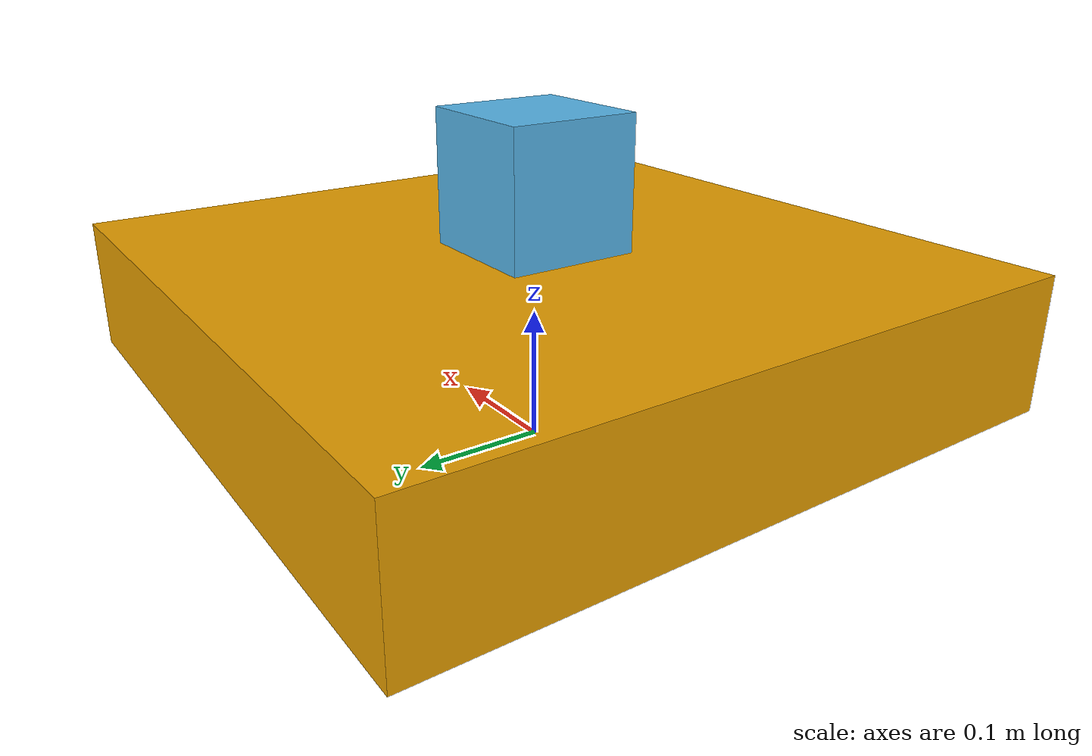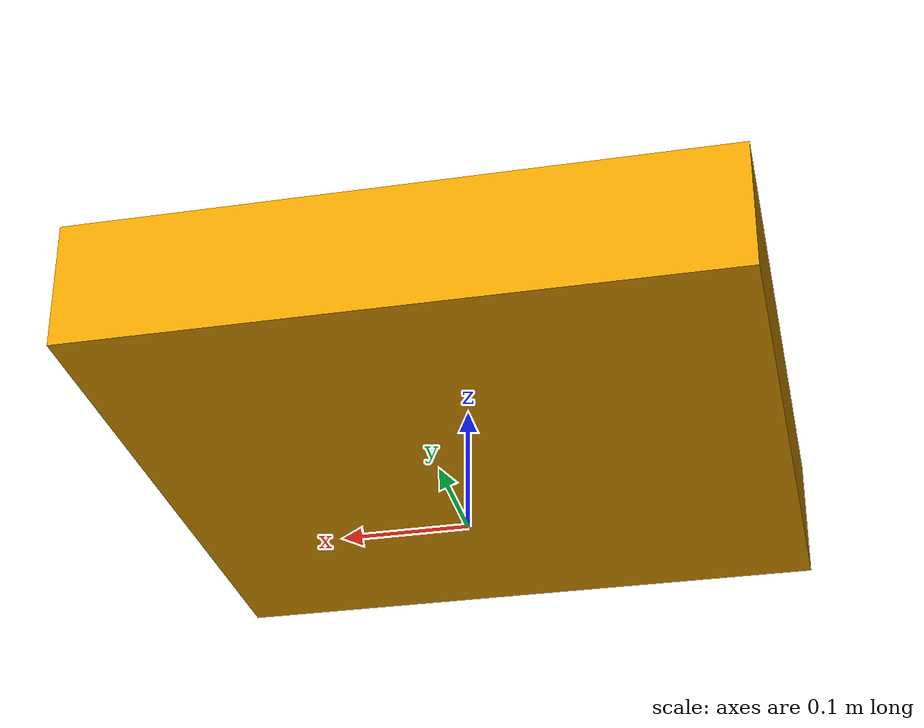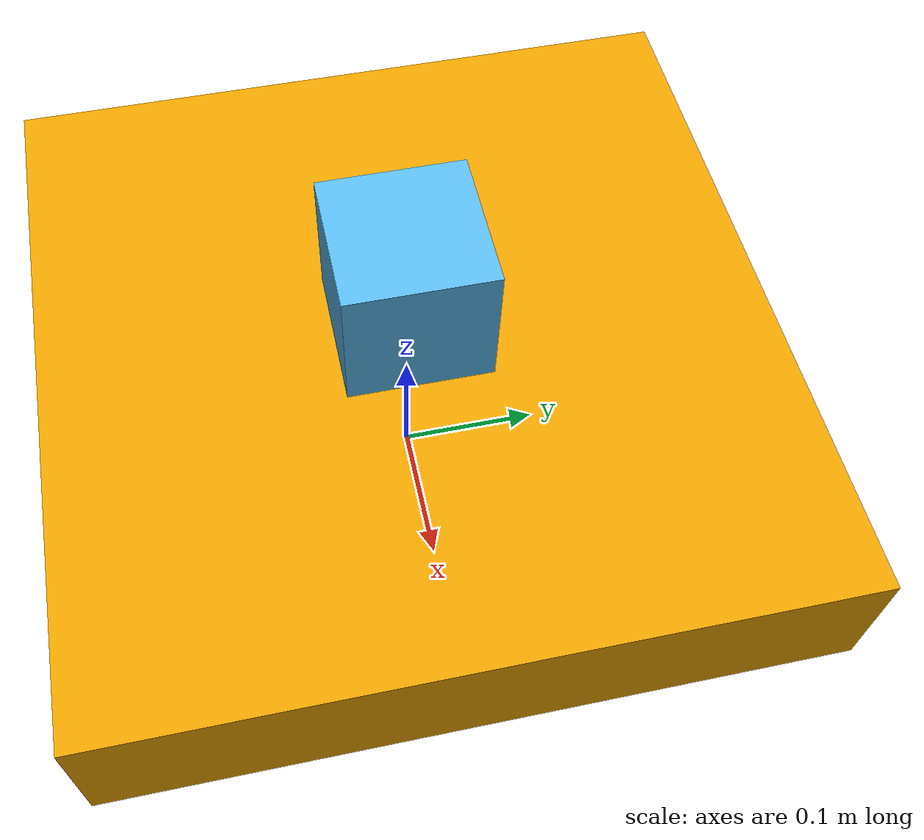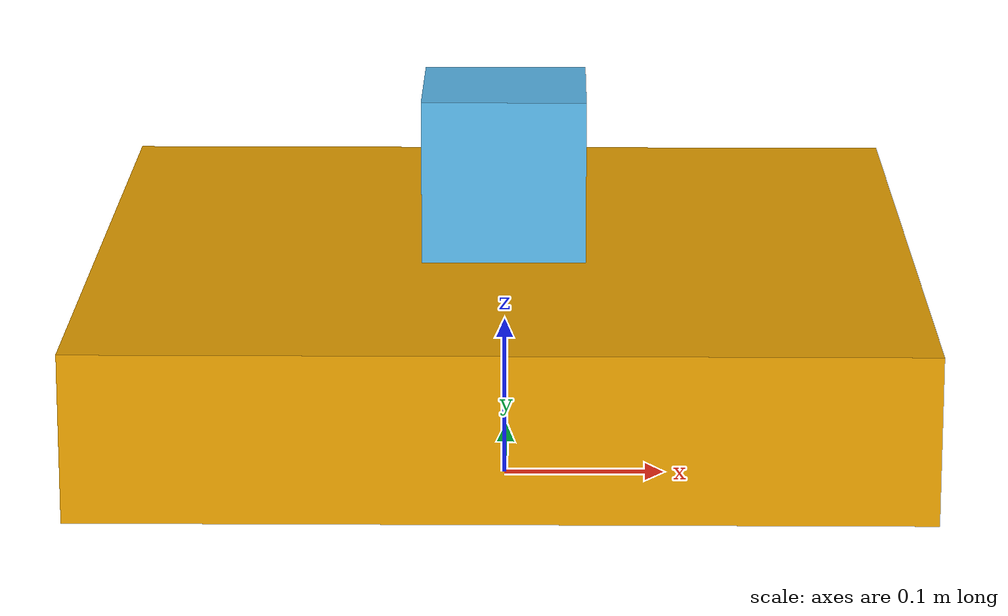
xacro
<?xml version="1.0" ?>
<robot name="hokuyo_robot">
    <!-- Definição do link base_link -->
    <link name="base_link">
        <inertial>
            <mass value="0.5" />
            <origin xyz="0 0 0.1" rpy="0 0 0"/>
            <inertia ixx="0.083" ixy="0" ixz="0" iyy="0.083" iyz="0" izz="0.083"/>
        </inertial>
        <visual>
            <origin xyz="0 0 0.1" rpy="0 0 0"/>
            <geometry>
                <box size="0.5 0.5 0.1"/>
            </geometry>
        </visual>
        <collision>
            <origin xyz="0 0 0.1" rpy="0 0 0"/>
            <geometry>
                <box size="0.5 0.5 0.1"/>
            </geometry>
        </collision>
    </link>

    <!-- Definição do link do sensor Hokuyo -->
    <link name="hokuyo_link">
        <inertial>
            <origin xyz="0 0 0" rpy="0 0 0"/>
            <mass value="0.1" />
            <inertia ixx="0.083" ixy="0" ixz="0" iyy="0.083" iyz="0" izz="0.083"/>
        </inertial>
        <visual>
            <origin xyz="0 0 0" rpy="0 0 0"/>
            <geometry>
                <box size="0.1 0.1 0.1"/>
            </geometry>
        </visual>
        <collision>
            <origin xyz="0 0 0" rpy="0 0 0"/>
            <geometry>
                <box size="0.1 0.1 0.1"/>
            </geometry>
        </collision>
    </link>

    <!-- Joint fixo conectando o base_link ao hokuyo_link-->
    <joint name="hokuyo_joint" type="fixed">
        <parent link="base_link"/>
        <child link="hokuyo_link"/>
        <origin xyz="0 0 0.2" rpy="0 0 0"/>
    </joint>

    <!-- Plugin do Gazebo para o sensor Hokuyo -->
    <gazebo reference="hokuyo_link">
        <sensor type="ray" name="hokuyo_sensor">
            <pose>0 0 0 0 0 0</pose>
            <ray>
                <scan>
                    <horizontal>
                        <samples>640</samples>
                        <resolution>1</resolution>
                        <min_angle>-2.26889</min_angle>
                        <max_angle>2.268899</max_angle>
                    </horizontal>
                </scan>
                <range>
                    <min>0.08</min>
                    <max>10</max>
                    <resolution>0.01</resolution>
                </range>
                <noise>
                    <type>gaussian</type>
                    <mean>0.0</mean>
                    <stddev>0.01</stddev>
                </noise>
            </ray>
            <plugin name="gazebo_ros_laser" filename="libgazebo_ros_laser.so">
                <!-- Publicar a nuvem de pontos no tópico /hokuyo/points -->
                <topicName>/hokuyo/points</topicName>
                <frameName>hokuyo_link</frameName>
            </plugin>
            <always_on>1</always_on>
            <update_rate>30</update_rate>
            <visualize>true</visualize>
        </sensor>
    </gazebo>
</robot>
